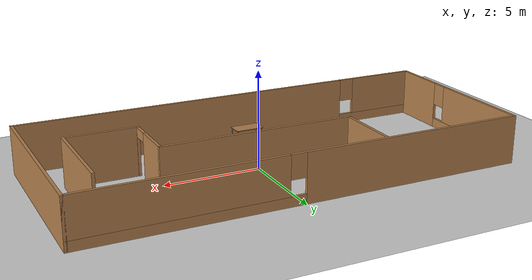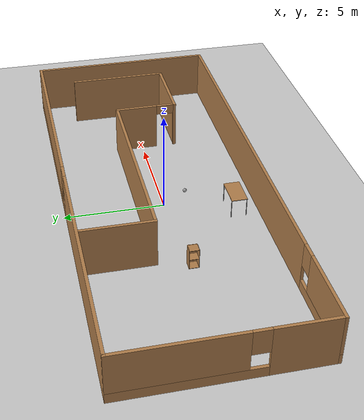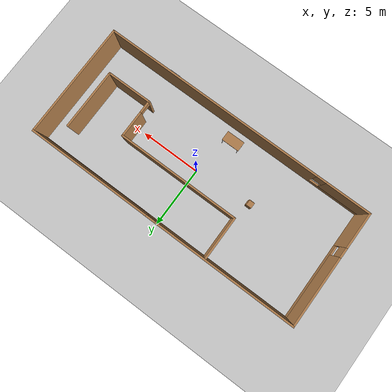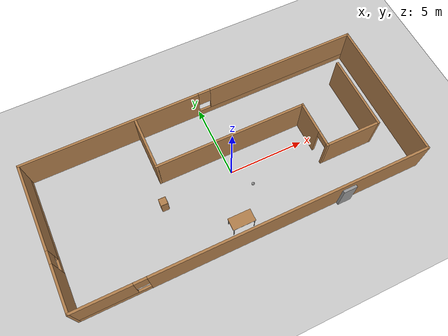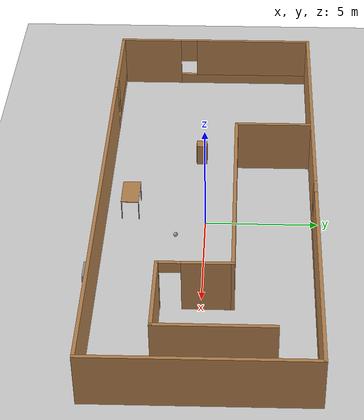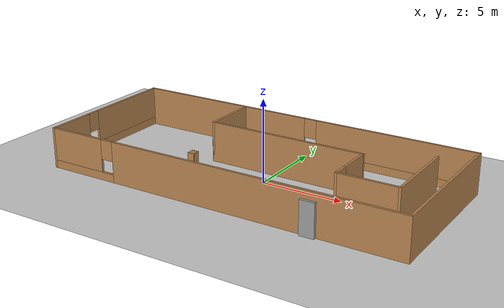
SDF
<sdf version="1.6">
 <world name="default">
  <light name="sun" type="directional">
   <pose>0 0 10 0 -0 0</pose>
   <diffuse>0.8 0.8 0.8 1</diffuse>
   <specular>0.2 0.2 0.2 1</specular>
   <attenuation>
    <range>1000</range>
    <constant>0.9</constant>
    <linear>0.01</linear>
    <quadratic>0.001</quadratic>
   </attenuation>
   <direction>-0.5 0.1 -0.9</direction>
  </light>
  <model name="ground_plane">
   <static>1</static>
   <link name="link">
    <collision name="collision">
     <geometry><plane><normal>0 0 1</normal><size>100 100</size></plane></geometry>
     <surface>
      <contact><collide_bitmask>65535</collide_bitmask></contact>
      <friction><ode><mu>100</mu><mu2>50</mu2></ode></friction>
     </surface>
    </collision>
    <visual name="visual">
     <cast_shadows>0</cast_shadows>
     <geometry><plane><normal>0 0 1</normal><size>100 100</size></plane></geometry>
     <material>
      <script><uri>file://media/materials/scripts/gazebo.material</uri><name>Gazebo/Grey</name></script>
     </material>
    </visual>
   </link>
  </model>
  <gravity>0 0 -9.8</gravity>
  <magnetic_field>6e-06 2.3e-05 -4.2e-05</magnetic_field>
  <atmosphere type="adiabatic"/>
  <physics name="default_physics" default="0" type="ode">
   <max_step_size>0.001</max_step_size>
   <real_time_factor>1</real_time_factor>
   <real_time_update_rate>1000</real_time_update_rate>
  </physics>
  <scene><ambient>0.4 0.4 0.4 1</ambient><background>0.7 0.7 0.7 1</background><shadows>1</shadows></scene>
  <spherical_coordinates>
   <surface_model>EARTH_WGS84</surface_model>
   <latitude_deg>0</latitude_deg>
   <longitude_deg>0</longitude_deg>
   <elevation>0</elevation>
   <heading_deg>0</heading_deg>
  </spherical_coordinates>
  <model name="LEEsbuilding">
   <pose>-0.38879 0.13876 0 0 -0 0</pose>
   <link name="Door_2">
    <collision name="Door_2_Collision">
     <geometry><box><size>0.9 0.17 2</size></box></geometry>
     <pose>0 0 1 0 -0 0</pose>
    </collision>
    <visual name="Door_2_Visual">
     <pose>0 0 1 0 -0 0</pose>
     <geometry><box><size>0.9 0.17 2</size></box></geometry>
     <material>
      <script><uri>file://media/materials/scripts/gazebo.material</uri><name>Gazebo/Grey</name></script>
     </material>
    </visual>
    <pose>5.88188 -4.8378 0 0 -0 0</pose>
   </link>
   <link name="Wall_11">
    <collision name="Wall_11_Collision">
     <geometry><box><size>3.75 0.15 2.5</size></box></geometry>
     <pose>0 0 1.25 0 -0 0</pose>
    </collision>
    <visual name="Wall_11_Visual">
     <pose>0 0 1.25 0 -0 0</pose>
     <geometry><box><size>3.75 0.15 2.5</size></box></geometry>
     <material>
      <script><uri>file://media/materials/scripts/gazebo.material</uri><name>Gazebo/Wood</name></script>
      <ambient>1 1 1 1</ambient>
     </material>
     <meta><layer>0</layer></meta>
    </visual>
    <pose>7.73215 -1.9245 0 0 -0 0</pose>
   </link>
   <link name="Wall_12">
    <collision name="Wall_12_Collision">
     <geometry><box><size>5 0.15 2.5</size></box></geometry>
     <pose>0 0 1.25 0 -0 0</pose>
    </collision>
    <visual name="Wall_12_Visual">
     <pose>0 0 1.25 0 -0 0</pose>
     <geometry><box><size>5 0.15 2.5</size></box></geometry>
     <material>
      <script><uri>file://media/materials/scripts/gazebo.material</uri><name>Gazebo/Wood</name></script>
      <ambient>1 1 1 1</ambient>
     </material>
     <meta><layer>0</layer></meta>
    </visual>
    <pose>9.53215 0.500496 0 0 -0 1.5708</pose>
   </link>
   <link name="Wall_2">
    <pose>0 4.675 0 0 -0 0</pose>
    <visual name="Wall_2_Visual_0">
     <pose>-5.5056 0 1.25 0 -0 0</pose>
     <geometry><box><size>11.7388 0.15 2.5</size></box></geometry>
     <material>
      <script><uri>file://media/materials/scripts/gazebo.material</uri><name>Gazebo/Wood</name></script>
      <ambient>1 1 1 1</ambient>
     </material>
     <meta><layer>0</layer></meta>
    </visual>
    <collision name="Wall_2_Collision_0">
     <geometry><box><size>11.7388 0.15 2.5</size></box></geometry>
     <pose>-5.5056 0 1.25 0 -0 0</pose>
    </collision>
    <visual name="Wall_2_Visual_1">
     <pose>5.8694 0 0.25 0 -0 0</pose>
     <geometry><box><size>11.0112 0.15 0.5</size></box></geometry>
     <material>
      <script><uri>file://media/materials/scripts/gazebo.material</uri><name>Gazebo/Wood</name></script>
      <ambient>1 1 1 1</ambient>
     </material>
     <meta><layer>0</layer></meta>
    </visual>
    <collision name="Wall_2_Collision_1">
     <geometry><box><size>11.0112 0.15 0.5</size></box></geometry>
     <pose>5.8694 0 0.25 0 -0 0</pose>
    </collision>
    <visual name="Wall_2_Visual_2">
     <pose>6.2694 0 1.5 0 -0 0</pose>
     <geometry><box><size>10.2112 0.15 2</size></box></geometry>
     <material>
      <script><uri>file://media/materials/scripts/gazebo.material</uri><name>Gazebo/Wood</name></script>
      <ambient>1 1 1 1</ambient>
     </material>
     <meta><layer>0</layer></meta>
    </visual>
    <collision name="Wall_2_Collision_2">
     <geometry><box><size>10.2112 0.15 2</size></box></geometry>
     <pose>6.2694 0 1.5 0 -0 0</pose>
    </collision>
    <visual name="Wall_2_Visual_3">
     <pose>0.763804 0 1.9 0 -0 0</pose>
     <geometry><box><size>0.8 0.15 1.2</size></box></geometry>
     <material>
      <script><uri>file://media/materials/scripts/gazebo.material</uri><name>Gazebo/Wood</name></script>
      <ambient>1 1 1 1</ambient>
     </material>
     <meta><layer>0</layer></meta>
    </visual>
    <collision name="Wall_2_Collision_3">
     <geometry><box><size>0.8 0.15 1.2</size></box></geometry>
     <pose>0.763804 0 1.9 0 -0 0</pose>
    </collision>
   </link>
   <link name="Wall_3">
    <collision name="Wall_3_Collision">
     <geometry><box><size>9.5 0.15 2.5</size></box></geometry>
     <pose>0 0 1.25 0 -0 0</pose>
    </collision>
    <visual name="Wall_3_Visual">
     <pose>0 0 1.25 0 -0 0</pose>
     <geometry><box><size>9.5 0.15 2.5</size></box></geometry>
     <material>
      <script><uri>file://media/materials/scripts/gazebo.material</uri><name>Gazebo/Wood</name></script>
      <ambient>1 1 1 1</ambient>
     </material>
     <meta><layer>0</layer></meta>
    </visual>
    <pose>11.3 0 0 0 0 -1.5708</pose>
   </link>
   <link name="Wall_4">
    <pose>0 -4.675 0 0 -0 3.14159</pose>
    <visual name="Wall_4_Visual_0">
     <pose>-2.26223 0 1.25 0 -0 0</pose>
     <geometry><box><size>18.2255 0.15 2.5</size></box></geometry>
     <material>
      <script><uri>file://media/materials/scripts/gazebo.material</uri><name>Gazebo/Wood</name></script>
      <ambient>1 1 1 1</ambient>
     </material>
     <meta><layer>0</layer></meta>
    </visual>
    <collision name="Wall_4_Collision_0">
     <geometry><box><size>18.2255 0.15 2.5</size></box></geometry>
     <pose>-2.26223 0 1.25 0 -0 0</pose>
    </collision>
    <visual name="Wall_4_Visual_1">
     <pose>9.11277 0 0.25 0 -0 0</pose>
     <geometry><box><size>4.52445 0.15 0.5</size></box></geometry>
     <material>
      <script><uri>file://media/materials/scripts/gazebo.material</uri><name>Gazebo/Wood</name></script>
      <ambient>1 1 1 1</ambient>
     </material>
     <meta><layer>0</layer></meta>
    </visual>
    <collision name="Wall_4_Collision_1">
     <geometry><box><size>4.52445 0.15 0.5</size></box></geometry>
     <pose>9.11277 0 0.25 0 -0 0</pose>
    </collision>
    <visual name="Wall_4_Visual_2">
     <pose>9.51277 0 1.5 0 -0 0</pose>
     <geometry><box><size>3.72445 0.15 2</size></box></geometry>
     <material>
      <script><uri>file://media/materials/scripts/gazebo.material</uri><name>Gazebo/Wood</name></script>
      <ambient>1 1 1 1</ambient>
     </material>
     <meta><layer>0</layer></meta>
    </visual>
    <collision name="Wall_4_Collision_2">
     <geometry><box><size>3.72445 0.15 2</size></box></geometry>
     <pose>9.51277 0 1.5 0 -0 0</pose>
    </collision>
    <visual name="Wall_4_Visual_3">
     <pose>7.25055 0 1.9 0 -0 0</pose>
     <geometry><box><size>0.8 0.15 1.2</size></box></geometry>
     <material>
      <script><uri>file://media/materials/scripts/gazebo.material</uri><name>Gazebo/Wood</name></script>
      <ambient>1 1 1 1</ambient>
     </material>
     <meta><layer>0</layer></meta>
    </visual>
    <collision name="Wall_4_Collision_3">
     <geometry><box><size>0.8 0.15 1.2</size></box></geometry>
     <pose>7.25055 0 1.9 0 -0 0</pose>
    </collision>
   </link>
   <link name="Wall_5">
    <pose>-11.3 0 0 0 -0 1.5708</pose>
    <visual name="Wall_5_Visual_0">
     <pose>-3.2482 0 1.25 0 -0 0</pose>
     <geometry><box><size>3.0036 0.15 2.5</size></box></geometry>
     <material>
      <script><uri>file://media/materials/scripts/gazebo.material</uri><name>Gazebo/Wood</name></script>
      <ambient>1 1 1 1</ambient>
     </material>
     <meta><layer>0</layer></meta>
    </visual>
    <collision name="Wall_5_Collision_0">
     <geometry><box><size>3.0036 0.15 2.5</size></box></geometry>
     <pose>-3.2482 0 1.25 0 -0 0</pose>
    </collision>
    <visual name="Wall_5_Visual_1">
     <pose>1.5018 0 0.25 0 -0 0</pose>
     <geometry><box><size>6.4964 0.15 0.5</size></box></geometry>
     <material>
      <script><uri>file://media/materials/scripts/gazebo.material</uri><name>Gazebo/Wood</name></script>
      <ambient>1 1 1 1</ambient>
     </material>
     <meta><layer>0</layer></meta>
    </visual>
    <collision name="Wall_5_Collision_1">
     <geometry><box><size>6.4964 0.15 0.5</size></box></geometry>
     <pose>1.5018 0 0.25 0 -0 0</pose>
    </collision>
    <visual name="Wall_5_Visual_2">
     <pose>1.9018 0 1.5 0 -0 0</pose>
     <geometry><box><size>5.6964 0.15 2</size></box></geometry>
     <material>
      <script><uri>file://media/materials/scripts/gazebo.material</uri><name>Gazebo/Wood</name></script>
      <ambient>1 1 1 1</ambient>
     </material>
     <meta><layer>0</layer></meta>
    </visual>
    <collision name="Wall_5_Collision_2">
     <geometry><box><size>5.6964 0.15 2</size></box></geometry>
     <pose>1.9018 0 1.5 0 -0 0</pose>
    </collision>
    <visual name="Wall_5_Visual_3">
     <pose>-1.3464 0 1.9 0 -0 0</pose>
     <geometry><box><size>0.8 0.15 1.2</size></box></geometry>
     <material>
      <script><uri>file://media/materials/scripts/gazebo.material</uri><name>Gazebo/Wood</name></script>
      <ambient>1 1 1 1</ambient>
     </material>
     <meta><layer>0</layer></meta>
    </visual>
    <collision name="Wall_5_Collision_3">
     <geometry><box><size>0.8 0.15 1.2</size></box></geometry>
     <pose>-1.3464 0 1.9 0 -0 0</pose>
    </collision>
   </link>
   <link name="Wall_7">
    <collision name="Wall_7_Collision">
     <geometry><box><size>3.5 0.15 2.5</size></box></geometry>
     <pose>0 0 1.25 0 -0 0</pose>
    </collision>
    <visual name="Wall_7_Visual">
     <pose>0 0 1.25 0 -0 0</pose>
     <geometry><box><size>3.5 0.15 2.5</size></box></geometry>
     <material>
      <script><uri>file://media/materials/scripts/gazebo.material</uri><name>Gazebo/Wood</name></script>
      <ambient>1 1 1 1</ambient>
     </material>
     <meta><layer>0</layer></meta>
    </visual>
    <pose>-3.91784 2.8505 0 0 0 -1.5708</pose>
   </link>
   <link name="Wall_8">
    <collision name="Wall_8_Collision">
     <geometry><box><size>10 0.15 2.5</size></box></geometry>
     <pose>0 0 1.25 0 -0 0</pose>
    </collision>
    <visual name="Wall_8_Visual">
     <pose>0 0 1.25 0 -0 0</pose>
     <geometry><box><size>10 0.15 2.5</size></box></geometry>
     <material>
      <script><uri>file://media/materials/scripts/gazebo.material</uri><name>Gazebo/Wood</name></script>
      <ambient>1 1 1 1</ambient>
     </material>
     <meta><layer>0</layer></meta>
    </visual>
    <pose>1.00716 1.1755 0 0 -0 0</pose>
   </link>
   <link name="Wall_9">
    <pose>5.93215 -0.374504 0 0 0 -1.5708</pose>
    <visual name="Wall_9_Visual_0">
     <pose>-0.531713 0 1.25 0 -0 0</pose>
     <geometry><box><size>2.18657 0.15 2.5</size></box></geometry>
     <material>
      <script><uri>file://media/materials/scripts/gazebo.material</uri><name>Gazebo/Wood</name></script>
      <ambient>1 1 1 1</ambient>
     </material>
     <meta><layer>0</layer></meta>
    </visual>
    <collision name="Wall_9_Collision_0">
     <geometry><box><size>2.18657 0.15 2.5</size></box></geometry>
     <pose>-0.531713 0 1.25 0 -0 0</pose>
    </collision>
    <visual name="Wall_9_Visual_1">
     <pose>1.54329 0 1.25 0 -0 0</pose>
     <geometry><box><size>0.163425 0.15 2.5</size></box></geometry>
     <material>
      <script><uri>file://media/materials/scripts/gazebo.material</uri><name>Gazebo/Wood</name></script>
      <ambient>1 1 1 1</ambient>
     </material>
     <meta><layer>0</layer></meta>
    </visual>
    <collision name="Wall_9_Collision_1">
     <geometry><box><size>0.163425 0.15 2.5</size></box></geometry>
     <pose>1.54329 0 1.25 0 -0 0</pose>
    </collision>
    <visual name="Wall_9_Visual_2">
     <pose>1.01157 0 2.25 0 -0 0</pose>
     <geometry><box><size>0.9 0.15 0.5</size></box></geometry>
     <material>
      <script><uri>file://media/materials/scripts/gazebo.material</uri><name>Gazebo/Wood</name></script>
      <ambient>1 1 1 1</ambient>
     </material>
     <meta><layer>0</layer></meta>
    </visual>
    <collision name="Wall_9_Collision_2">
     <geometry><box><size>0.9 0.15 0.5</size></box></geometry>
     <pose>1.01157 0 2.25 0 -0 0</pose>
    </collision>
   </link>
   <static>1</static>
  </model>
  <model name="cabinet">
   <static>1</static>
   <link name="cabinet_bottom_plate">
    <inertial>
     <pose>0 0 -1 0 -0 0</pose>
     <inertia><ixx>2.05</ixx><ixy>0</ixy><ixz>0</ixz><iyy>2.05</iyy><iyz>0</iyz><izz>2.05</izz></inertia>
     <mass>25</mass>
    </inertial>
    <collision name="cabinet_bottom_plate_geom">
     <pose>0 0 0.01 0 -0 0</pose>
     <geometry><box><size>0.45 0.45 0.02</size></box></geometry>
    </collision>
    <visual name="cabinet_bottom_plate_geom_visual">
     <pose>0 0 0.01 0 -0 0</pose>
     <geometry><box><size>0.45 0.45 0.02</size></box></geometry>
     <material>
      <script><uri>file://media/materials/scripts/gazebo.material</uri><name>Gazebo/Wood</name></script>
     </material>
    </visual>
    <collision name="cabinet_bottom_plate_geom_cabinet_back_plate">
     <pose>0.235 0 0.51 0 -0 0</pose>
     <geometry><box><size>0.02 0.45 1.02</size></box></geometry>
    </collision>
    <visual name="cabinet_bottom_plate_geom_cabinet_back_plate_visual">
     <pose>0.235 0 0.51 0 -0 0</pose>
     <geometry><box><size>0.02 0.45 1.02</size></box></geometry>
     <material>
      <script><uri>file://media/materials/scripts/gazebo.material</uri><name>Gazebo/Wood</name></script>
     </material>
    </visual>
    <collision name="cabinet_bottom_plate_geom_cabinet_left_plate">
     <pose>0 0.235 0.51 0 -0 0</pose>
     <geometry><box><size>0.45 0.02 1.02</size></box></geometry>
    </collision>
    <visual name="cabinet_bottom_plate_geom_cabinet_left_plate_visual">
     <pose>0 0.235 0.51 0 -0 0</pose>
     <geometry><box><size>0.45 0.02 1.02</size></box></geometry>
     <material>
      <script><uri>file://media/materials/scripts/gazebo.material</uri><name>Gazebo/Wood</name></script>
     </material>
    </visual>
    <collision name="cabinet_bottom_plate_geom_cabinet_middle_plate">
     <pose>0 0 0.51 0 -0 0</pose>
     <geometry><box><size>0.45 0.45 0.02</size></box></geometry>
    </collision>
    <visual name="cabinet_bottom_plate_geom_cabinet_middle_plate_visual">
     <pose>0 0 0.51 0 -0 0</pose>
     <geometry><box><size>0.45 0.45 0.02</size></box></geometry>
     <material>
      <script><uri>file://media/materials/scripts/gazebo.material</uri><name>Gazebo/Wood</name></script>
     </material>
    </visual>
    <collision name="cabinet_bottom_plate_geom_cabinet_right_plate">
     <pose>0 -0.235 0.51 0 -0 0</pose>
     <geometry><box><size>0.45 0.02 1.02</size></box></geometry>
    </collision>
    <visual name="cabinet_bottom_plate_geom_cabinet_right_plate_visual">
     <pose>0 -0.235 0.51 0 -0 0</pose>
     <geometry><box><size>0.45 0.02 1.02</size></box></geometry>
     <material>
      <script><uri>file://media/materials/scripts/gazebo.material</uri><name>Gazebo/Wood</name></script>
     </material>
    </visual>
    <collision name="cabinet_bottom_plate_geom_cabinet_top_plate">
     <pose>0 0 1.01 0 -0 0</pose>
     <geometry><box><size>0.45 0.45 0.02</size></box></geometry>
    </collision>
    <visual name="cabinet_bottom_plate_geom_cabinet_top_plate_visual">
     <pose>0 0 1.01 0 -0 0</pose>
     <geometry><box><size>0.45 0.45 0.02</size></box></geometry>
     <material>
      <script><uri>file://media/materials/scripts/gazebo.material</uri><name>Gazebo/Wood</name></script>
     </material>
    </visual>
   </link>
   <pose>-4.73213 -0.312804 0 0 -0 0</pose>
  </model>
  <model name="table">
   <static>1</static>
   <link name="link">
    <collision name="surface">
     <pose>0 0 1 0 -0 0</pose>
     <geometry><box><size>1.5 0.8 0.03</size></box></geometry>
     <surface><friction><ode><mu>0.6</mu><mu2>0.6</mu2></ode></friction></surface>
    </collision>
    <visual name="visual1">
     <pose>0 0 1 0 -0 0</pose>
     <geometry><box><size>1.5 0.8 0.03</size></box></geometry>
     <material>
      <script><uri>file://media/materials/scripts/gazebo.material</uri><name>Gazebo/Wood</name></script>
     </material>
    </visual>
    <collision name="front_left_leg">
     <pose>0.68 0.38 0.5 0 -0 0</pose>
     <geometry><cylinder><radius>0.02</radius><length>1</length></cylinder></geometry>
    </collision>
    <visual name="front_left_leg">
     <pose>0.68 0.38 0.5 0 -0 0</pose>
     <geometry><cylinder><radius>0.02</radius><length>1</length></cylinder></geometry>
     <material>
      <script><uri>file://media/materials/scripts/gazebo.material</uri><name>Gazebo/Grey</name></script>
     </material>
    </visual>
    <collision name="front_right_leg">
     <pose>0.68 -0.38 0.5 0 -0 0</pose>
     <geometry><cylinder><radius>0.02</radius><length>1</length></cylinder></geometry>
    </collision>
    <visual name="front_right_leg">
     <pose>0.68 -0.38 0.5 0 -0 0</pose>
     <geometry><cylinder><radius>0.02</radius><length>1</length></cylinder></geometry>
     <material>
      <script><uri>file://media/materials/scripts/gazebo.material</uri><name>Gazebo/Grey</name></script>
     </material>
    </visual>
    <collision name="back_right_leg">
     <pose>-0.68 -0.38 0.5 0 -0 0</pose>
     <geometry><cylinder><radius>0.02</radius><length>1</length></cylinder></geometry>
    </collision>
    <visual name="back_right_leg">
     <pose>-0.68 -0.38 0.5 0 -0 0</pose>
     <geometry><cylinder><radius>0.02</radius><length>1</length></cylinder></geometry>
     <material>
      <script><uri>file://media/materials/scripts/gazebo.material</uri><name>Gazebo/Grey</name></script>
     </material>
    </visual>
    <collision name="back_left_leg">
     <pose>-0.68 0.38 0.5 0 -0 0</pose>
     <geometry><cylinder><radius>0.02</radius><length>1</length></cylinder></geometry>
    </collision>
    <visual name="back_left_leg">
     <pose>-0.68 0.38 0.5 0 -0 0</pose>
     <geometry><cylinder><radius>0.02</radius><length>1</length></cylinder></geometry>
     <material>
      <script><uri>file://media/materials/scripts/gazebo.material</uri><name>Gazebo/Grey</name></script>
     </material>
    </visual>
   </link>
   <pose>-0.947117 -3.37767 0 0 -0 0</pose>
  </model>
  <model name="my_ball">
   <link name="link_1">
    <inertial>
     <mass>1</mass>
     <inertia><ixx>0.1</ixx><ixy>0</ixy><ixz>0</ixz><iyy>0.1</iyy><iyz>0</iyz><izz>0.1</izz></inertia>
    </inertial>
    <visual name="visual">
     <geometry><sphere><radius>0.1</radius></sphere></geometry>
     <material>
      <lighting>1</lighting>
      <script><uri>file://media/materials/scripts/gazebo.material</uri><name>Gazebo/Grey</name></script>
      <shader type="pixel"><normal_map>__default__</normal_map></shader>
      <ambient>1 1 1 1</ambient>
      <diffuse>1 1 1 1</diffuse>
      <specular>1 1 1 1</specular>
      <emissive>1 1 1 1</emissive>
     </material>
    </visual>
    <collision name="collision">
     <geometry><sphere><radius>0.1</radius></sphere></geometry>
     <surface>
      <friction>
       <ode><mu>1</mu><mu2>1</mu2><fdir1>0 0 0</fdir1><slip1>0</slip1><slip2>0</slip2></ode>
       <torsional>
        <coefficient>1</coefficient>
        <patch_radius>0</patch_radius>
        <surface_radius>0</surface_radius>
        <use_patch_radius>1</use_patch_radius>
        <ode><slip>0</slip></ode>
       </torsional>
      </friction>
      <bounce><restitution_coefficient>0</restitution_coefficient><threshold>1e+06</threshold></bounce>
      <contact>
       <collide_without_contact>0</collide_without_contact>
       <collide_without_contact_bitmask>1</collide_without_contact_bitmask>
       <collide_bitmask>1</collide_bitmask>
       <ode>
        <soft_cfm>0</soft_cfm>
        <soft_erp>0.2</soft_erp>
        <kp>1e+13</kp>
        <kd>1</kd>
        <max_vel>0.01</max_vel>
        <min_depth>0</min_depth>
       </ode>
       <bullet>
        <split_impulse>1</split_impulse>
        <split_impulse_penetration_threshold>-0.01</split_impulse_penetration_threshold>
        <soft_cfm>0</soft_cfm>
        <soft_erp>0.2</soft_erp>
        <kp>1e+13</kp>
        <kd>1</kd>
       </bullet>
      </contact>
     </surface>
    </collision>
   </link>
   <static>0</static>
   <pose>0.910769 -1.28817 0.1 0 -0 0</pose>
  </model>
 </world>
</sdf>
